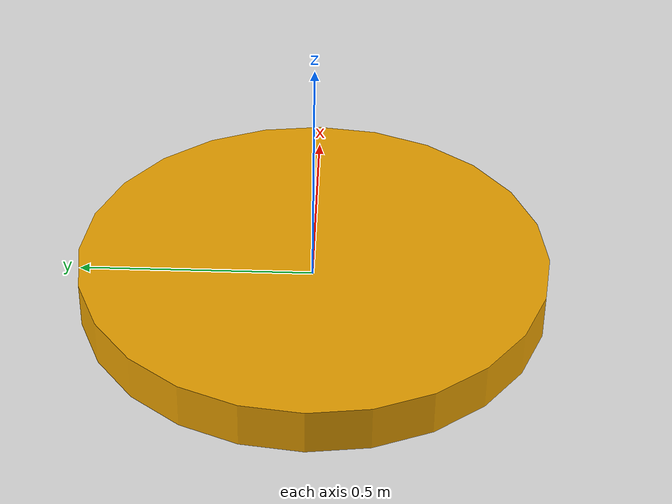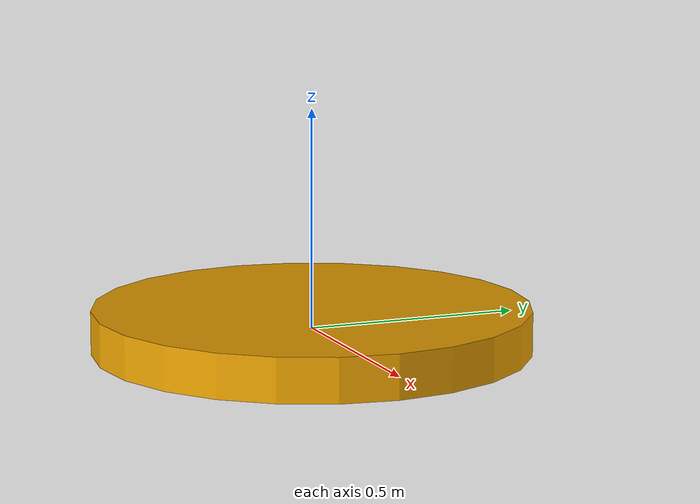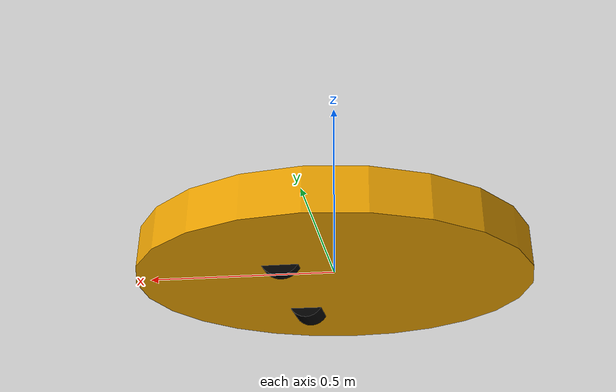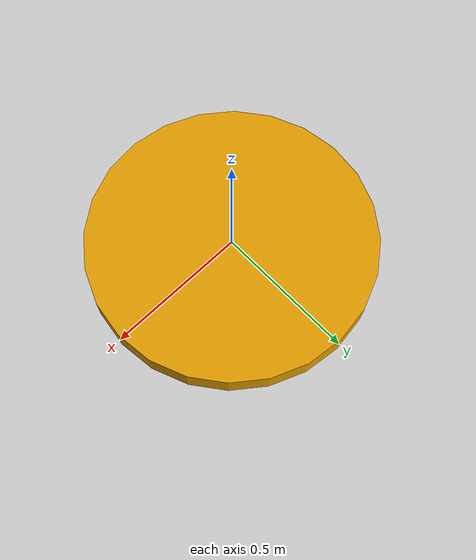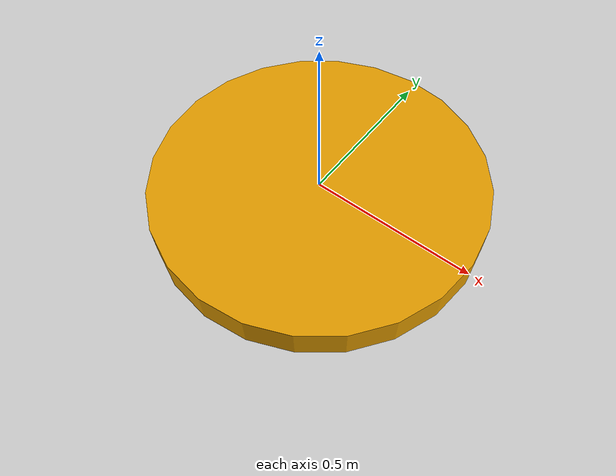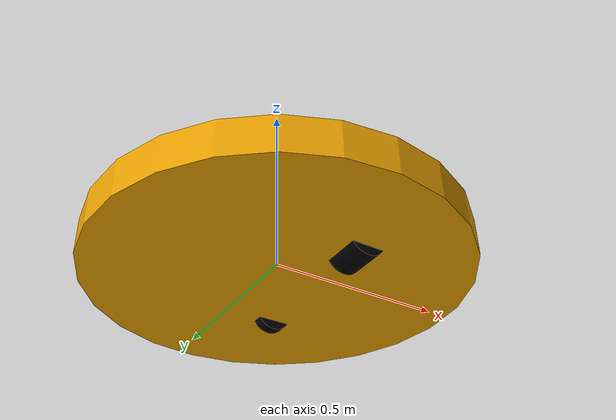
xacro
<?xml version ="1.0"?>
<robot name="mon_premier_robot">

<xacro:property name="chassis_diameter" value="0.5"/>
    <xacro:property name="chassis_height" value="0.1"/>
    <xacro:property name="wheel_diameter" value="0.1"/>
    <xacro:property name="wheel_width" value="0.03"/>
    <xacro:property name="wheel_desaxing" value="0.4"/>
    <xacro:property name="wheel_forwarding" value="0.1"/>
    <xacro:property name="crazy_wheel_backwarding" value="0.2"/>
    <xacro:property name="crazy_wheel_diameter" value="0.05"/>
    <xacro:property name="crazy_wheel_width" value="0.02"/>

    <material name="Black">
        <color rgba="0.0 0.0 0.0 1.0"/>
    </material>

    <link name="base_link">
<!-- TACHE 02 : METTRE A JOUR BASE_LINK AVEC LES PARAMETRES-->
        <visual>
            <geometry>
                <cylinder radius="${chassis_diameter}" length="${chassis_height}" />
            </geometry>
        </visual>
        <collision>
            <geometry>
                <cylinder radius="${chassis_diameter}" length="${chassis_height}" />
            </geometry>
        </collision>
<!-- FIN DE TACHE 02-->
    </link>

    <link name="right_wheel">
<!-- TACHE 03 : METTRE A JOUR RIGHT_WHEEL AVEC LES PARAMETRES-->
        <visual>
            <geometry>
                <cylinder radius="${wheel_diameter/2}" length="${wheel_diameter}" />
            </geometry>
            <origin rpy="1.57075 0.0 0.0"/>
            <material name="Black"/>
        </visual>
        <collision>
            <geometry>
                <cylinder radius="${wheel_diameter/2}" length="${wheel_diameter}" />
            </geometry>
            <origin rpy="1.57075 0.0 0.0"/>
            <material name="Black"/>
        </collision>
<!-- FIN DE TACHE 03-->
    </link>

    <joint name="right_wheel_joint" type="continuous">
<!-- TACHE 04 : METTRE A JOUR RIGHT_WHEEL_JOINT AVEC LES PARAMETRES-->
        <parent link="base_link"/>
        <child link="right_wheel"/>
        <origin xyz="${wheel_forwarding} ${-wheel_desaxing/2} ${-wheel_diameter/4}"/>
        <axis xyz="0.0 1.0 0.0"/>
<!-- FIN DE TACHE 04-->
    </joint>

   <link name="left_wheel">
        <visual>
            <geometry>
                <cylinder radius="${wheel_diameter/2}" length="${wheel_width}" />
            </geometry>
            <origin rpy="${pi/2} 0.0 0.0"/>
            <material name="Black"/>
        </visual>
        <collision>
            <geometry>
                <cylinder radius="${wheel_diameter/2}" length="${wheel_width}" />
            </geometry>
            <origin rpy="${pi/2} 0.0 0.0"/>
            <material name="Black"/>
        </collision>
    </link>

<!-- FIN DE TACHE 05-->
    <joint name="left_wheel_joint" type="continuous">
        <parent link="base_link"/>
        <child link="left_wheel"/>
        <origin xyz="${wheel_forwarding} ${wheel_desaxing/2} ${-wheel_diameter/4}"/>
        <axis xyz="0.0 1.0 0.0"/>
    </joint>

<!-- FIN DE TACHE 06-->

    <link name="crazy_wheel_support"/>

    <joint name="crazy_wheel_support_joint" type="continuous">
        <parent link="base_link"/>
        <child link="crazy_wheel_support"/>
        <origin xyz="${-crazy_wheel_backwarding} 0.0 ${-(wheel_diameter - crazy_wheel_diameter)/2}"/>
        <axis xyz="0.0 0.0 1.0"/>
    </joint>

<!-- FIN DE TACHE 07-->

<link name="crazy_wheel">
        <visual>
            <geometry>
                <cylinder radius="${crazy_wheel_diameter/2}" length="${crazy_wheel_width}" />
            </geometry>
            <origin rpy="${pi/2} 0.0 0.0"/>
            <material name="Black"/>
        </visual>
        <collision>
            <geometry>
                <cylinder radius="${crazy_wheel_diameter/2}" length="${crazy_wheel_width}" />
            </geometry>
            <origin rpy="${pi/2} 0.0 0.0"/>
            <material name="Black"/>
        </collision>
    </link>
<!-- FIN DE TACHE 08-->

      <joint name="crazy_wheel_joint" type="continuous">
        <parent link="crazy_wheel_support"/>
        <child link="crazy_wheel"/>
        <origin xyz="0.0 0.0 0.0"/>
        <axis xyz="0.0 1.0 0.0"/>
    </joint>

</robot>
